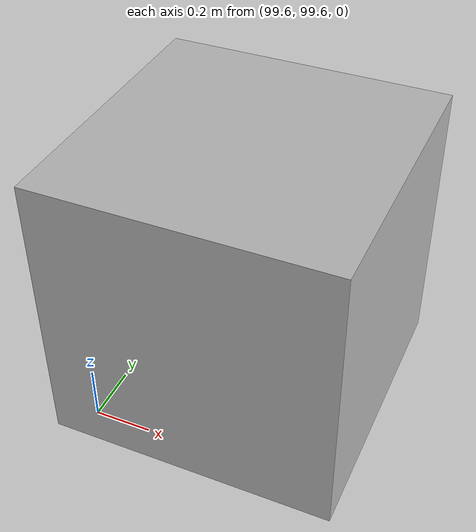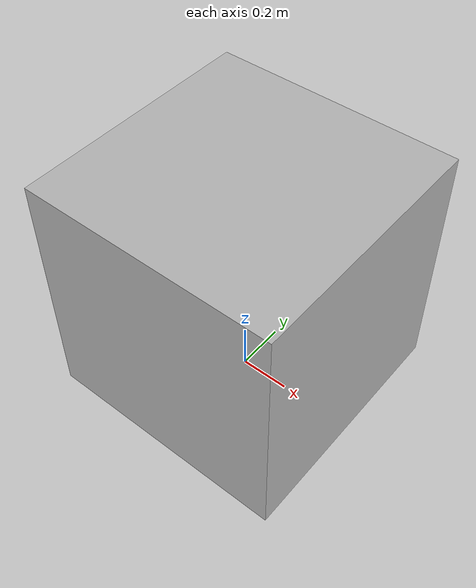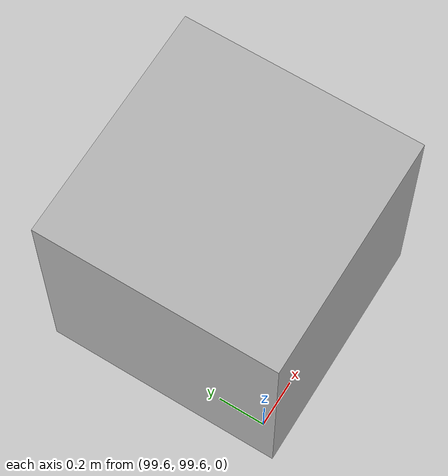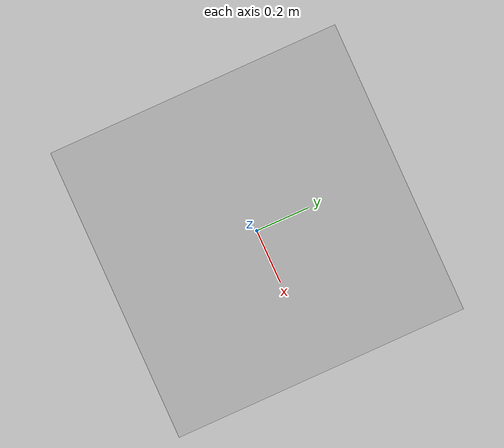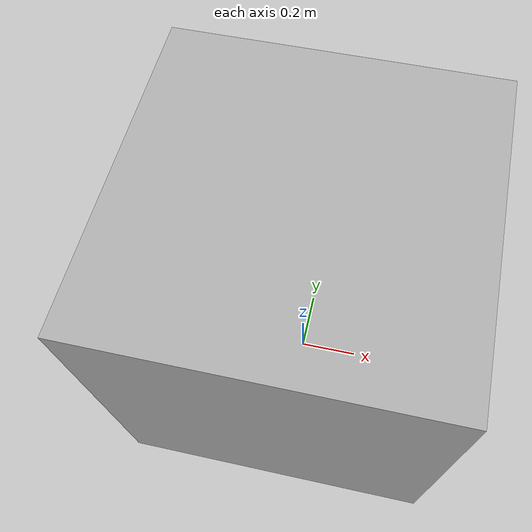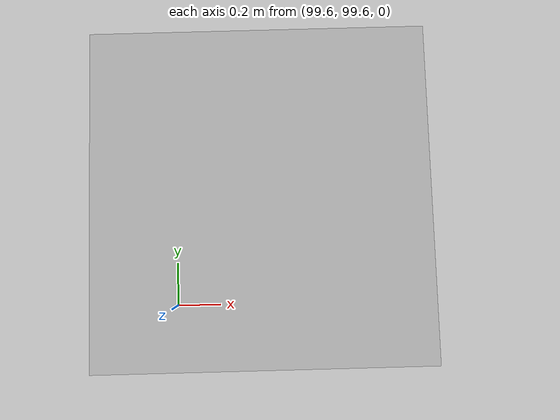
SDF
<?xml version="1.0"?>
<sdf version="1.6">
  <world name="default">
    <include>
      <uri>model://ground_plane</uri>
    </include>

     <include>
      <uri>model://sun</uri>
    </include>

    <model name="box1">
      <link name="link">
        <pose>0 0 0.5 0 0 0</pose>

        <collision name="box_collision">
          <geometry>
            <box>
              <size>1 1 1</size>
            </box>
          </geometry>
        </collision>

        <visual name="visual">
          <geometry>
            <box>
              <size>1 1 1</size>
            </box>
          </geometry>
        </visual>

        <sensor name="wirelessTransmitter" type="wireless_transmitter">
          <plugin name="wifi_router_plugin" filename="libwifirouter.so"/>
          <always_on>1</always_on>
          <update_rate>1</update_rate>
          <visualize>true</visualize>
          <transceiver>
            <essid>osrf</essid>
            <frequency>2442.0</frequency>
            <power>14.5</power>
            <gain>2.6</gain>
          </transceiver>
        </sensor>

      </link>
    </model>

    <model name="box2">
      <link name="link">
        <pose>100 100 0.5 0 0 0</pose>

        <collision name="box_collision">
          <geometry>
            <box>
              <size>1 1 1</size>
            </box>
          </geometry>
        </collision>

        <visual name="visual">
          <geometry>
            <box>
              <size>1 1 1</size>
            </box>
          </geometry>
        </visual>

        <sensor name="wirelessReceiver" type="wireless_receiver">
          <plugin name="wifi_receiver_plugin" filename="libwifireceiver.so"/>
          <always_on>1</always_on>
          <update_rate>1</update_rate>
          <visualize>true</visualize>
          <pose>100 100 0.5 0 0 0</pose>
          <transceiver>
            <min_frequency>2412.0</min_frequency>
            <max_frequency>2484.0</max_frequency>
            <power>14.5</power>
            <gain>2.5</gain>
            <sensitivity>-90.0</sensitivity>
          </transceiver>
        </sensor>

      </link>
    </model>

  </world>
</sdf>
